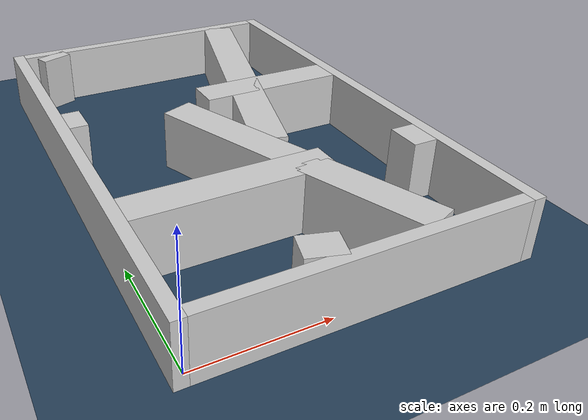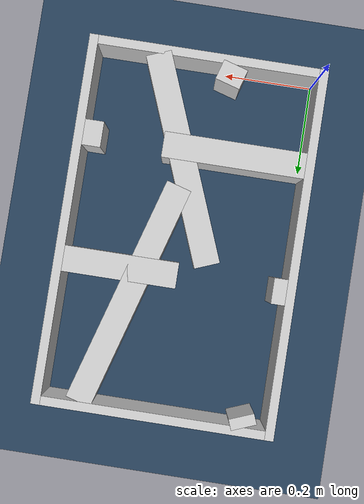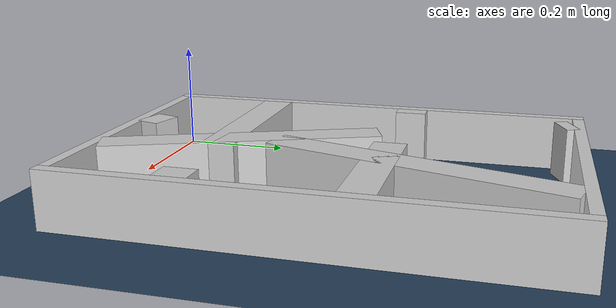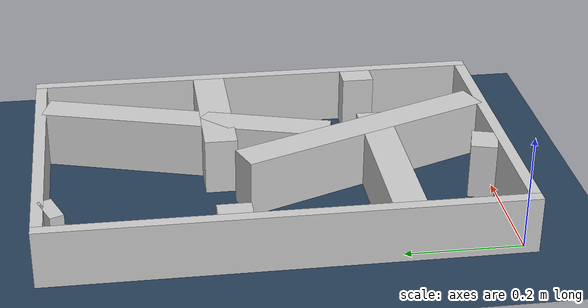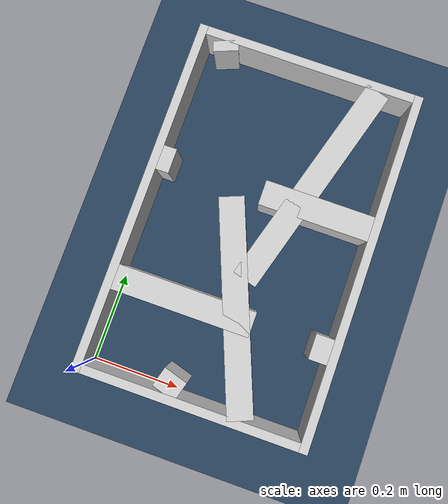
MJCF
<?xml version="1.0" ?>
<mujoco model="generated_real_template">
  <compiler angle="degree"/>
  <option timestep="0.002" integrator="implicitfast" iterations="100" cone="elliptic"/>
  <default>
    <geom density="1"/>
  </default>
  <asset>
    <texture builtin="gradient" height="3072" rgb1="0.3 0.5 0.7" rgb2="0 0 0" type="skybox" width="512"/>
    <texture builtin="checker" height="300" mark="edge" markrgb="0.8 0.8 0.8" name="groundplane" rgb1="0.2 0.3 0.4" rgb2="0.1 0.2 0.3" type="2d" width="300"/>
    <material name="groundplane" reflectance="0.2" texrepeat="5 5" texture="groundplane" texuniform="true"/>
  </asset>
  <worldbody>
    <light dir="0 0 -1" directional="true" pos="0 0 1.5"/>
    <geom name="floor" type="plane" condim="4" friction="0.5 0.005 0.001" material="groundplane" size="0 0 0.05"/>
    <body name="walls">
      <geom name="wall_boundary_left" type="box" condim="4" friction="1.0 0.005 0.0001" rgba="0.8 0.8 0.8 1" pos="-0.010000 0.387500 0.050000" euler="0 0 0.000000" size="0.010000 0.407500 0.050000"/>
      <geom name="wall_boundary_right" type="box" condim="4" friction="1.0 0.005 0.0001" rgba="0.8 0.8 0.8 1" pos="0.500000 0.387500 0.050000" euler="0 0 0.000000" size="0.010000 0.407500 0.050000"/>
      <geom name="wall_boundary_bottom" type="box" condim="4" friction="1.0 0.005 0.0001" rgba="0.8 0.8 0.8 1" pos="0.245000 -0.010000 0.050000" euler="0 0 0.000000" size="0.245000 0.010000 0.050000"/>
      <geom name="wall_boundary_top" type="box" condim="4" friction="1.0 0.005 0.0001" rgba="0.8 0.8 0.8 1" pos="0.245000 0.785000 0.050000" euler="0 0 0.000000" size="0.245000 0.010000 0.050000"/>
      <geom name="wall_inner_1_1" type="box" condim="4" friction="1.0 0.005 0.0001" rgba="0.8 0.8 0.8 1" pos="0.157131 0.195927 0.050000" euler="0 0 0.000000" size="0.157131 0.028500 0.050000"/>
      <geom name="wall_inner_1_2" type="box" condim="4" friction="1.0 0.005 0.0001" rgba="0.8 0.8 0.8 1" pos="0.469193 0.195927 0.050000" euler="0 0 0.000000" size="0.020807 0.028500 0.050000"/>
      <geom name="wall_inner_2_1" type="box" condim="4" friction="1.0 0.005 0.0001" rgba="0.8 0.8 0.8 1" pos="0.266632 0.221709 0.050000" euler="0 0 111.622128" size="0.238490 0.028500 0.050000"/>
      <geom name="wall_inner_2_2" type="box" condim="4" friction="1.0 0.005 0.0001" rgba="0.8 0.8 0.8 1" pos="0.051841 0.763598 0.050000" euler="0 0 111.622128" size="0.012265 0.028500 0.050000"/>
      <geom name="wall_inner_3_1" type="box" condim="4" friction="1.0 0.005 0.0001" rgba="0.8 0.8 0.8 1" pos="0.015146 0.474581 0.050000" euler="0 0 0.000000" size="0.015146 0.028500 0.050000"/>
      <geom name="wall_inner_3_2" type="box" condim="4" friction="1.0 0.005 0.0001" rgba="0.8 0.8 0.8 1" pos="0.364626 0.474581 0.050000" euler="0 0 0.000000" size="0.125374 0.028500 0.050000"/>
      <geom name="wall_inner_4_1" type="box" condim="4" friction="1.0 0.005 0.0001" rgba="0.8 0.8 0.8 1" pos="0.189429 0.022007 0.050000" euler="0 0 73.712481" size="0.022927 0.028500 0.050000"/>
      <geom name="wall_inner_4_2" type="box" condim="4" friction="1.0 0.005 0.0001" rgba="0.8 0.8 0.8 1" pos="0.337307 0.528121 0.050000" euler="0 0 73.712481" size="0.257201 0.028500 0.050000"/>
    </body>
  </worldbody>
</mujoco>
